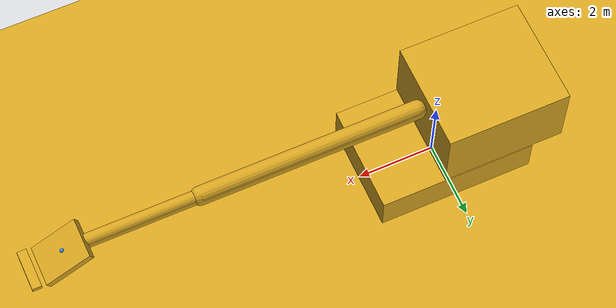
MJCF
<mujoco model="backhoe">
  <compiler angle="radian" autolimits="true"/>
  <option timestep="0.002" gravity="0 0 -9.81" integrator="implicitfast" cone="elliptic"/>

  <default>
    <joint damping="500" armature="5" limited="true"/>
    <geom rgba="0.85 0.65 0.13 1" contype="0" conaffinity="0"/>
  </default>

  <asset>
    <texture name="grid" type="2d" builtin="checker" rgb1="0.25 0.28 0.32" rgb2="0.32 0.36 0.40"
             width="512" height="512"/>
    <material name="grid" texture="grid" texrepeat="40 40" reflectance="0.05"/>
    <material name="steel" rgba="0.80 0.62 0.12 1"/>
    <material name="dark" rgba="0.20 0.22 0.25 1"/>
  </asset>

  <worldbody>
    <light name="sun" pos="0 0 20" dir="0 0 -1" diffuse="0.8 0.8 0.8" directional="true"/>
    <geom name="ground" type="plane" size="40 40 0.1" material="grid" friction="1 0.05 0.001"/>

    <!-- lower travel body (welded to world; travel handled kinematically) -->
    <!-- PC200-11: クローラ全長 4070mm / 全幅 2805mm / 旋回ベアリング ~1.0m -->
    <body name="base" pos="0 0 0">
      <geom name="base_geom" type="box" pos="0 0 0.50" size="2.035 1.40 0.50" material="dark"/>
      <inertial pos="0 0 0.50" mass="9000" diaginertia="6000 9000 11000"/>

      <!-- swing / upper structure (後端旋回半径 2830mm に合わせ後方へ寄せる) -->
      <body name="swing" pos="0 0 1.0">
        <joint name="swing" type="hinge" axis="0 0 1" range="-3.14159 3.14159"/>
        <geom name="cab_geom" type="box" pos="-1.23 0 1.0" size="1.6 1.40 0.95" material="steel"/>
        <inertial pos="-1.0 0 1.0" mass="7400" diaginertia="6000 6000 8000"/>

        <!-- boom -->
        <body name="boom" pos="0.55 0 1.45">
          <joint name="boom" type="hinge" axis="0 1 0" range="-0.698132 0.942478"/>
          <geom name="boom_geom" type="capsule" fromto="0 0 0  5.70 0 0" size="0.24" material="steel"/>
          <inertial pos="2.85 0 0" mass="1700" diaginertia="60 5200 5200"/>

          <!-- arm / stick (2.9 m アーム) -->
          <body name="arm" pos="5.70 0 0">
            <joint name="arm" type="hinge" axis="0 1 0" range="-0.349066 2.792527"/>
            <geom name="arm_geom" type="capsule" fromto="0 0 0  2.90 0 0" size="0.18" material="steel"/>
            <inertial pos="1.45 0 0" mass="1000" diaginertia="30 760 760"/>

            <!-- bucket (標準容量 0.80 m³) -->
            <body name="bucket" pos="2.90 0 0">
              <joint name="bucket" type="hinge" axis="0 1 0" range="-0.436332 3.054326"/>
              <!-- bucket shell: back plate + cutting edge + side plates -->
              <geom name="bucket_back" type="box" pos="0.60 0 -0.13" size="0.65 0.52 0.10"
                    euler="0 0.5 0" material="steel"/>
              <geom name="bucket_edge" type="box" pos="1.45 0 -0.35" size="0.12 0.52 0.06"
                    material="dark"/>
              <inertial pos="0.8 0 -0.25" mass="700" diaginertia="120 120 120"/>
              <!-- cutting edge reference point -->
              <site name="bucket_tip" pos="1.50 0 -0.35" size="0.05" rgba="1 0.2 0.2 1"/>
              <site name="bucket_back_site" pos="0.60 0 0.0" size="0.05" rgba="0.2 0.6 1 1"/>
            </body>
          </body>
        </body>
      </body>
    </body>
  </worldbody>
</mujoco>
